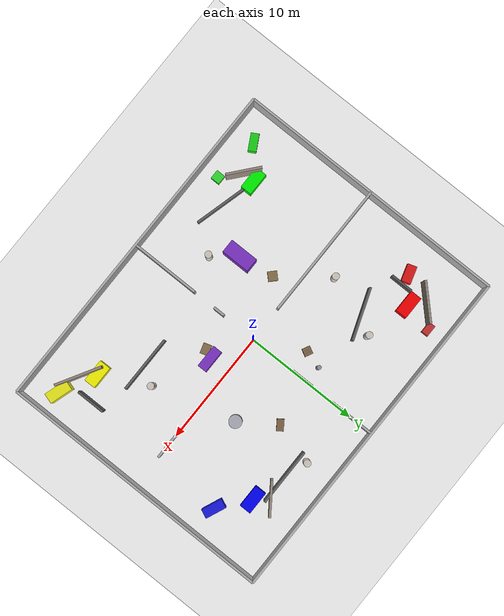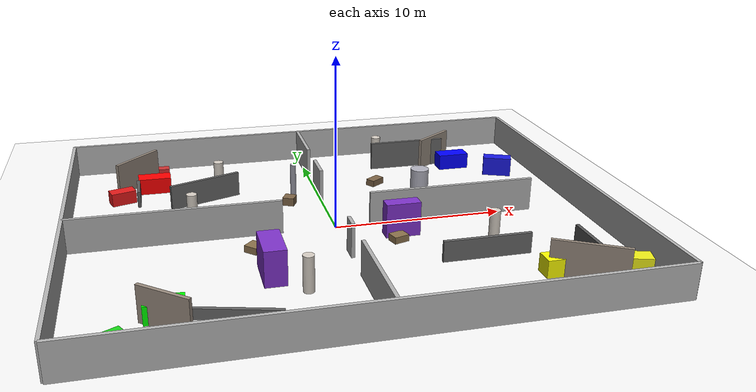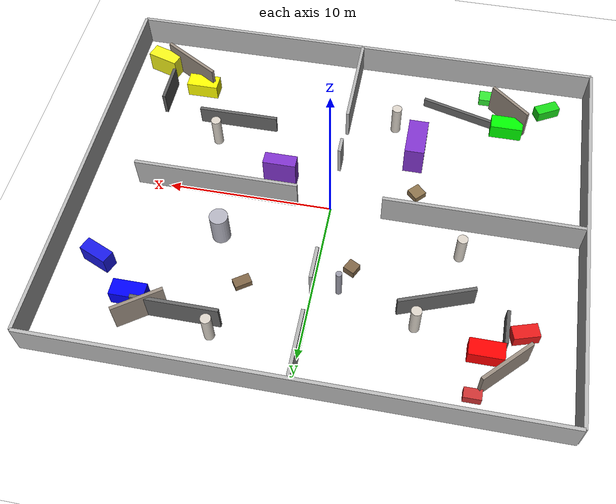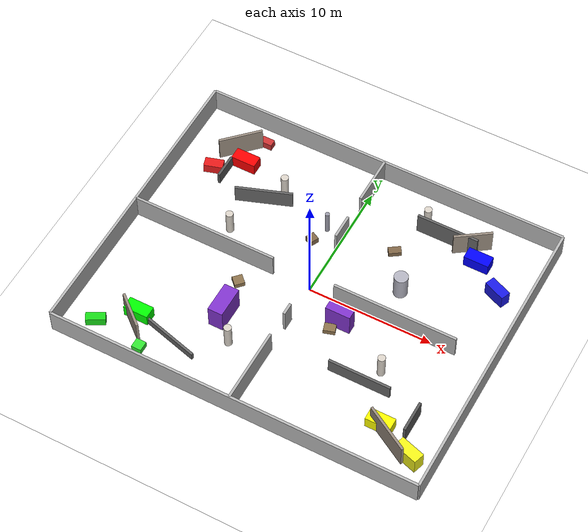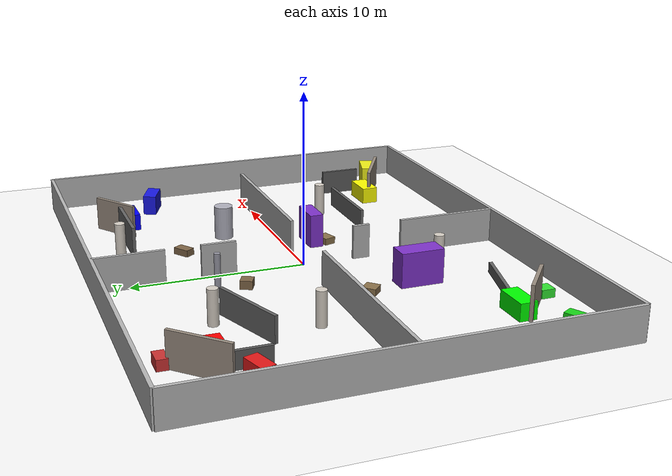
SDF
<?xml version="1.0" ?>
<sdf version="1.7">
  <world name="warehouse_world">

<!-- Plugins                                               -->

<plugin filename="gz-sim-physics-system"
        name="gz::sim::systems::Physics"/>
<plugin filename="gz-sim-user-commands-system"
        name="gz::sim::systems::UserCommands"/>
<plugin filename="gz-sim-scene-broadcaster-system"
        name="gz::sim::systems::SceneBroadcaster"/>
<plugin filename="gz-sim-sensors-system"
        name="gz::sim::systems::Sensors">
  <render_engine>ogre2</render_engine>
</plugin>
<plugin filename="gz-sim-imu-system"
        name="gz::sim::systems::Imu"/>
<plugin filename="gz-sim-air-pressure-system"
        name="gz::sim::systems::AirPressure"/>
<plugin filename="gz-sim-magnetometer-system"
        name="gz::sim::systems::Magnetometer"/>
<plugin filename="gz-sim-navsat-system"
        name="gz::sim::systems::NavSat"/>

<magnetic_field>6e-06 2.3e-05 -4.2e-05</magnetic_field>
<atmosphere type="adiabatic"/>
<spherical_coordinates>
  <surface_model>EARTH_WGS84</surface_model>
  <world_frame_orientation>ENU</world_frame_orientation>
  <latitude_deg>47.397971057728974</latitude_deg>
  <longitude_deg>8.546163739800146</longitude_deg>
  <elevation>0</elevation>
</spherical_coordinates>

<!-- Sun -->
<include>
  <uri>https://fuel.gazebosim.org/1.0/OpenRobotics/models/Sun</uri>
</include>

<!-- FLOOR                                                 -->

<model name="white_floor">
  <static>true</static>
  <pose>0 0 0 0 0 0</pose>
  <link name="floor_link">
    <collision name="collision">
      <geometry><plane><normal>0 0 1</normal><size>40 40</size></plane></geometry>
    </collision>
    <visual name="visual">
      <geometry><plane><normal>0 0 1</normal><size>40 40</size></plane></geometry>
      <material>
        <ambient>1 1 1 1</ambient>
        <diffuse>1 1 1 1</diffuse>
        <specular>0.1 0.1 0.1 1</specular>
      </material>
    </visual>
  </link>
</model>

<!-- OUTER WALLS                                           -->

<model name="wall_north">
  <static>true</static>
  <pose>0 12 1 0 0 0</pose>
  <link name="link">
    <collision name="collision"><geometry><box><size>30 0.2 2</size></box></geometry></collision>
    <visual name="visual"><geometry><box><size>30 0.2 2</size></box></geometry></visual>
  </link>
</model>

<model name="wall_south">
  <static>true</static>
  <pose>0 -12 1 0 0 0</pose>
  <link name="link">
    <collision name="collision"><geometry><box><size>30 0.2 2</size></box></geometry></collision>
    <visual name="visual"><geometry><box><size>30 0.2 2</size></box></geometry></visual>
  </link>
</model>

<model name="wall_east">
  <static>true</static>
  <pose>15 0 1 0 0 0</pose>
  <link name="link">
    <collision name="collision"><geometry><box><size>0.2 24 2</size></box></geometry></collision>
    <visual name="visual"><geometry><box><size>0.2 24 2</size></box></geometry></visual>
  </link>
</model>

<model name="wall_west">
  <static>true</static>
  <pose>-15 0 1 0 0 0</pose>
  <link name="link">
    <collision name="collision"><geometry><box><size>0.2 24 2</size></box></geometry></collision>
    <visual name="visual"><geometry><box><size>0.2 24 2</size></box></geometry></visual>
  </link>
</model>

<!-- INTERNAL WALLS  (asymmetric openings)                 -->
<!-- Horizontal mid-wall: opening shifted to x=-2 instead  -->
<!-- of center, so left/right passages are not mirrors.    -->

<!-- Left segment ends at x=-3.1 (opening from -3 to -1) -->
<model name="mid_wall_left">
  <static>true</static>
  <pose>-9.05 0 1 0 0 0</pose>
  <link name="link">
    <collision name="collision"><geometry><box><size>11.9 0.2 2</size></box></geometry></collision>
    <visual name="visual">
      <geometry><box><size>11.9 0.2 2</size></box></geometry>
      <material><ambient>0.7 0.7 0.7 1</ambient><diffuse>0.7 0.7 0.7 1</diffuse></material>
    </visual>
  </link>
</model>

<!-- Right segment starts at x=-1 and goes to x=15 -->
<model name="mid_wall_right">
  <static>true</static>
  <pose>7 0 1 0 0 0</pose>
  <link name="link">
    <collision name="collision"><geometry><box><size>10 0.2 2</size></box></geometry></collision>
    <visual name="visual">
      <geometry><box><size>10 0.2 2</size></box></geometry>
      <material><ambient>0.7 0.7 0.7 1</ambient><diffuse>0.7 0.7 0.7 1</diffuse></material>
    </visual>
  </link>
</model>

<!-- Vertical mid-wall: two openings at y=+7 (width 2) and y=-5 (width 2) -->
<!-- These are at different Y positions — asymmetric -->
<!-- top segment: y=8..12 (len=4) -->
<model name="mid_vertical_top">
  <static>true</static>
  <pose>0 10 1 0 0 0</pose>
  <link name="link">
    <collision name="collision"><geometry><box><size>0.2 4 2</size></box></geometry></collision>
    <visual name="visual">
      <geometry><box><size>0.2 4 2</size></box></geometry>
      <material><ambient>0.7 0.7 0.7 1</ambient><diffuse>0.7 0.7 0.7 1</diffuse></material>
    </visual>
  </link>
</model>

<!-- upper-middle segment: y=4..6 (len=2), gap above at y=6..8 -->
<model name="mid_vertical_upper_mid">
  <static>true</static>
  <pose>0 5 1 0 0 0</pose>
  <link name="link">
    <collision name="collision"><geometry><box><size>0.2 2 2</size></box></geometry></collision>
    <visual name="visual">
      <geometry><box><size>0.2 2 2</size></box></geometry>
      <material><ambient>0.7 0.7 0.7 1</ambient><diffuse>0.7 0.7 0.7 1</diffuse></material>
    </visual>
  </link>
</model>

<!-- middle segment: y=-4..-3 (len=1), gap below at y=-5..-3 -->
<model name="mid_vertical_lower_mid">
  <static>true</static>
  <pose>0 -3.5 1 0 0 0</pose>
  <link name="link">
    <collision name="collision"><geometry><box><size>0.2 1 2</size></box></geometry></collision>
    <visual name="visual">
      <geometry><box><size>0.2 1 2</size></box></geometry>
      <material><ambient>0.7 0.7 0.7 1</ambient><diffuse>0.7 0.7 0.7 1</diffuse></material>
    </visual>
  </link>
</model>

<!-- bottom segment: y=-12..-6 (len=6), gap at y=-6..-4 -->
<model name="mid_vertical_bottom">
  <static>true</static>
  <pose>0 -9 1 0 0 0</pose>
  <link name="link">
    <collision name="collision"><geometry><box><size>0.2 6 2</size></box></geometry></collision>
    <visual name="visual">
      <geometry><box><size>0.2 6 2</size></box></geometry>
      <material><ambient>0.7 0.7 0.7 1</ambient><diffuse>0.7 0.7 0.7 1</diffuse></material>
    </visual>
  </link>
</model>

<!-- DIAGONAL WALL SEGMENTS  (break axis-alignment)        -->

<!-- Diagonal spur in top-left quadrant, 45 deg -->
<model name="diag_wall_tl">
  <static>true</static>
  <pose>-11 9 1 0 0 0.785</pose>
  <link name="link">
    <collision name="collision"><geometry><box><size>3.5 0.2 2</size></box></geometry></collision>
    <visual name="visual">
      <geometry><box><size>3.5 0.2 2</size></box></geometry>
      <material><ambient>0.6 0.55 0.5 1</ambient><diffuse>0.6 0.55 0.5 1</diffuse></material>
    </visual>
  </link>
</model>

<!-- Diagonal spur in bottom-right quadrant, -30 deg -->
<model name="diag_wall_br">
  <static>true</static>
  <pose>11 -9 1 0 0 -0.524</pose>
  <link name="link">
    <collision name="collision"><geometry><box><size>4 0.2 2</size></box></geometry></collision>
    <visual name="visual">
      <geometry><box><size>4 0.2 2</size></box></geometry>
      <material><ambient>0.6 0.55 0.5 1</ambient><diffuse>0.6 0.55 0.5 1</diffuse></material>
    </visual>
  </link>
</model>

<!-- Short angled wall in top-right, ~35 deg -->
<model name="diag_wall_tr">
  <static>true</static>
  <pose>9 9 1 0 0 0.611</pose>
  <link name="link">
    <collision name="collision"><geometry><box><size>3 0.2 2</size></box></geometry></collision>
    <visual name="visual">
      <geometry><box><size>3 0.2 2</size></box></geometry>
      <material><ambient>0.6 0.55 0.5 1</ambient><diffuse>0.6 0.55 0.5 1</diffuse></material>
    </visual>
  </link>
</model>

<!-- Short angled wall in bottom-left, ~-40 deg -->
<model name="diag_wall_bl">
  <static>true</static>
  <pose>-10 -9 1 0 0 -0.698</pose>
  <link name="link">
    <collision name="collision"><geometry><box><size>3 0.2 2</size></box></geometry></collision>
    <visual name="visual">
      <geometry><box><size>3 0.2 2</size></box></geometry>
      <material><ambient>0.6 0.55 0.5 1</ambient><diffuse>0.6 0.55 0.5 1</diffuse></material>
    </visual>
  </link>
</model>

<!-- CYLINDRICAL PILLARS  (distinctive LiDAR landmarks)    -->
<!-- Placed asymmetrically so no two quadrants are mirrors -->

<model name="pillar_1">
  <static>true</static>
  <pose>-6 7 1 0 0 0</pose>
  <link name="link">
    <collision name="collision"><geometry><cylinder><radius>0.3</radius><length>2</length></cylinder></geometry></collision>
    <visual name="visual">
      <geometry><cylinder><radius>0.3</radius><length>2</length></cylinder></geometry>
      <material><ambient>0.85 0.82 0.78 1</ambient><diffuse>0.85 0.82 0.78 1</diffuse></material>
    </visual>
  </link>
</model>

<model name="pillar_2">
  <static>true</static>
  <pose>5 9.5 1 0 0 0</pose>
  <link name="link">
    <collision name="collision"><geometry><cylinder><radius>0.3</radius><length>2</length></cylinder></geometry></collision>
    <visual name="visual">
      <geometry><cylinder><radius>0.3</radius><length>2</length></cylinder></geometry>
      <material><ambient>0.85 0.82 0.78 1</ambient><diffuse>0.85 0.82 0.78 1</diffuse></material>
    </visual>
  </link>
</model>

<model name="pillar_3">
  <static>true</static>
  <pose>-3 -7 1 0 0 0</pose>
  <link name="link">
    <collision name="collision"><geometry><cylinder><radius>0.3</radius><length>2</length></cylinder></geometry></collision>
    <visual name="visual">
      <geometry><cylinder><radius>0.3</radius><length>2</length></cylinder></geometry>
      <material><ambient>0.85 0.82 0.78 1</ambient><diffuse>0.85 0.82 0.78 1</diffuse></material>
    </visual>
  </link>
</model>

<model name="pillar_4">
  <static>true</static>
  <pose>8 -4 1 0 0 0</pose>
  <link name="link">
    <collision name="collision"><geometry><cylinder><radius>0.3</radius><length>2</length></cylinder></geometry></collision>
    <visual name="visual">
      <geometry><cylinder><radius>0.3</radius><length>2</length></cylinder></geometry>
      <material><ambient>0.85 0.82 0.78 1</ambient><diffuse>0.85 0.82 0.78 1</diffuse></material>
    </visual>
  </link>
</model>

<model name="pillar_5">
  <static>true</static>
  <pose>-8 2 1 0 0 0</pose>
  <link name="link">
    <collision name="collision"><geometry><cylinder><radius>0.3</radius><length>2</length></cylinder></geometry></collision>
    <visual name="visual">
      <geometry><cylinder><radius>0.3</radius><length>2</length></cylinder></geometry>
      <material><ambient>0.85 0.82 0.78 1</ambient><diffuse>0.85 0.82 0.78 1</diffuse></material>
    </visual>
  </link>
</model>

<!-- Wide pillar — different radius makes it a unique landmark -->
<model name="pillar_6_wide">
  <static>true</static>
  <pose>6 3 1 0 0 0</pose>
  <link name="link">
    <collision name="collision"><geometry><cylinder><radius>0.55</radius><length>2</length></cylinder></geometry></collision>
    <visual name="visual">
      <geometry><cylinder><radius>0.55</radius><length>2</length></cylinder></geometry>
      <material><ambient>0.7 0.7 0.75 1</ambient><diffuse>0.7 0.7 0.75 1</diffuse></material>
    </visual>
  </link>
</model>

<!-- Thin pillar near entrance area -->
<model name="pillar_7_thin">
  <static>true</static>
  <pose>-1.5 5.5 1 0 0 0</pose>
  <link name="link">
    <collision name="collision"><geometry><cylinder><radius>0.18</radius><length>2</length></cylinder></geometry></collision>
    <visual name="visual">
      <geometry><cylinder><radius>0.18</radius><length>2</length></cylinder></geometry>
      <material><ambient>0.6 0.6 0.65 1</ambient><diffuse>0.6 0.6 0.65 1</diffuse></material>
    </visual>
  </link>
</model>

<!-- CENTER STRUCTURE  (anchors map center, breaks symmetry)-->
<!-- An L-shaped structure composed of two boxes           -->

<model name="center_block_main">
  <static>true</static>
  <pose>-4.5 -5 1 0 0 0</pose>
  <link name="link">
    <collision name="collision"><geometry><box><size>1.2 2.5 2</size></box></geometry></collision>
    <visual name="visual">
      <geometry><box><size>1.2 2.5 2</size></box></geometry>
      <material><ambient>0.5 0.2 0.8 1</ambient><diffuse>0.5 0.2 0.8 1</diffuse></material>
    </visual>
  </link>
</model>

<model name="center_block_arm">
  <static>true</static>
  <pose>3.4 -1.7 1 0 0 0</pose>
  <link name="link">
    <collision name="collision"><geometry><box><size>2 0.8 2</size></box></geometry></collision>
    <visual name="visual">
      <geometry><box><size>2 0.8 2</size></box></geometry>
      <material><ambient>0.5 0.2 0.8 1</ambient><diffuse>0.5 0.2 0.8 1</diffuse></material>
    </visual>
  </link>
</model>

<!-- AISLE BLOCKERS  (rotated, varied heights)             -->

<!-- Top-left: rotated 20 deg, full height -->
<model name="blocker_tl">
  <static>true</static>
  <pose>-7 5.5 0.75 0 0 0.349</pose>
  <link name="link">
    <collision name="collision"><geometry><box><size>4.5 0.2 1.5</size></box></geometry></collision>
    <visual name="visual">
      <geometry><box><size>4.5 0.2 1.5</size></box></geometry>
      <material><ambient>0.4 0.4 0.4 1</ambient><diffuse>0.4 0.4 0.4 1</diffuse></material>
    </visual>
  </link>
</model>

<!-- Top-right: straight, taller (1.8m) -->
<model name="blocker_tr">
  <static>true</static>
  <pose>7 8.8 0.9 0 0 0</pose>
  <link name="link">
    <collision name="collision"><geometry><box><size>5 0.2 1.8</size></box></geometry></collision>
    <visual name="visual">
      <geometry><box><size>5 0.2 1.8</size></box></geometry>
      <material><ambient>0.4 0.4 0.4 1</ambient><diffuse>0.4 0.4 0.4 1</diffuse></material>
    </visual>
  </link>
</model>

<!-- Bottom-left: rotated -15 deg, low (0.6m) -->
<model name="blocker_bl">
  <static>true</static>
  <pose>-7 -8.8 0.3 0 0 -0.262</pose>
  <link name="link">
    <collision name="collision"><geometry><box><size>5 0.2 0.6</size></box></geometry></collision>
    <visual name="visual">
      <geometry><box><size>5 0.2 0.6</size></box></geometry>
      <material><ambient>0.4 0.4 0.4 1</ambient><diffuse>0.4 0.4 0.4 1</diffuse></material>
    </visual>
  </link>
</model>

<!-- Bottom-right: straight, medium (1.2m) -->
<model name="blocker_br">
  <static>true</static>
  <pose>7 -5.5 0.6 0 0 0</pose>
  <link name="link">
    <collision name="collision"><geometry><box><size>5 0.2 1.2</size></box></geometry></collision>
    <visual name="visual">
      <geometry><box><size>5 0.2 1.2</size></box></geometry>
      <material><ambient>0.4 0.4 0.4 1</ambient><diffuse>0.4 0.4 0.4 1</diffuse></material>
    </visual>
  </link>
</model>

<!-- Extra L-shaped blocker cluster in top-left aisle -->
<model name="blocker_tl_b">
  <static>true</static>
  <pose>-11 6.5 0.5 0 0 1.5708</pose>
  <link name="link">
    <collision name="collision"><geometry><box><size>2 0.2 1.0</size></box></geometry></collision>
    <visual name="visual">
      <geometry><box><size>2 0.2 1.0</size></box></geometry>
      <material><ambient>0.35 0.35 0.35 1</ambient><diffuse>0.35 0.35 0.35 1</diffuse></material>
    </visual>
  </link>
</model>

<!-- Extra blocker in bottom-right area -->
<model name="blocker_br_b">
  <static>true</static>
  <pose>12 -7 0.75 0 0 1.5708</pose>
  <link name="link">
    <collision name="collision"><geometry><box><size>2.5 0.2 1.5</size></box></geometry></collision>
    <visual name="visual">
      <geometry><box><size>2.5 0.2 1.5</size></box></geometry>
      <material><ambient>0.35 0.35 0.35 1</ambient><diffuse>0.35 0.35 0.35 1</diffuse></material>
    </visual>
  </link>
</model>

<!-- SHELF CLUSTERS  (grouped boxes per zone, irregular)   -->
<!-- Each zone has 2-3 boxes at varied positions/rotations -->

<!-- RED zone cluster (top-left) -->
<model name="shelf_red_a">
  <static>true</static>
  <pose>-10 8 0.5 0 0 0</pose>
  <link name="link">
    <collision name="collision"><geometry><box><size>2 1 1</size></box></geometry></collision>
    <visual name="visual">
      <geometry><box><size>2 1 1</size></box></geometry>
      <material><ambient>1 0 0 1</ambient><diffuse>1 0 0 1</diffuse></material>
    </visual>
  </link>
</model>

<model name="shelf_red_b">
  <static>true</static>
  <pose>-12 6.5 0.4 0 0 0.3</pose>
  <link name="link">
    <collision name="collision"><geometry><box><size>1.5 0.8 0.8</size></box></geometry></collision>
    <visual name="visual">
      <geometry><box><size>1.5 0.8 0.8</size></box></geometry>
      <material><ambient>0.9 0.1 0.1 1</ambient><diffuse>0.9 0.1 0.1 1</diffuse></material>
    </visual>
  </link>
</model>

<model name="shelf_red_c">
  <static>true</static>
  <pose>-9.5 10.5 0.3 0 0 0</pose>
  <link name="link">
    <collision name="collision"><geometry><box><size>1 0.6 0.6</size></box></geometry></collision>
    <visual name="visual">
      <geometry><box><size>1 0.6 0.6</size></box></geometry>
      <material><ambient>0.8 0.2 0.2 1</ambient><diffuse>0.8 0.2 0.2 1</diffuse></material>
    </visual>
  </link>
</model>

<!-- BLUE zone cluster (top-right) -->
<model name="shelf_blue_a">
  <static>true</static>
  <pose>10 8 0.5 0 0 0</pose>
  <link name="link">
    <collision name="collision"><geometry><box><size>2 1 1</size></box></geometry></collision>
    <visual name="visual">
      <geometry><box><size>2 1 1</size></box></geometry>
      <material><ambient>0 0 1 1</ambient><diffuse>0 0 1 1</diffuse></material>
    </visual>
  </link>
</model>

<model name="shelf_blue_b">
  <static>true</static>
  <pose>12.5 6 0.6 0 0 -0.4</pose>
  <link name="link">
    <collision name="collision"><geometry><box><size>1.8 0.8 1.2</size></box></geometry></collision>
    <visual name="visual">
      <geometry><box><size>1.8 0.8 1.2</size></box></geometry>
      <material><ambient>0.1 0.1 0.9 1</ambient><diffuse>0.1 0.1 0.9 1</diffuse></material>
    </visual>
  </link>
</model>

<!-- GREEN zone cluster (bottom-left) -->
<model name="shelf_green_a">
  <static>true</static>
  <pose>-10 -8 0.5 0 0 0</pose>
  <link name="link">
    <collision name="collision"><geometry><box><size>2 1 1</size></box></geometry></collision>
    <visual name="visual">
      <geometry><box><size>2 1 1</size></box></geometry>
      <material><ambient>0 1 0 1</ambient><diffuse>0 1 0 1</diffuse></material>
    </visual>
  </link>
</model>

<model name="shelf_green_b">
  <static>true</static>
  <pose>-12.5 -10 0.35 0 0 0.5</pose>
  <link name="link">
    <collision name="collision"><geometry><box><size>1.5 0.7 0.7</size></box></geometry></collision>
    <visual name="visual">
      <geometry><box><size>1.5 0.7 0.7</size></box></geometry>
      <material><ambient>0.1 0.85 0.1 1</ambient><diffuse>0.1 0.85 0.1 1</diffuse></material>
    </visual>
  </link>
</model>

<model name="shelf_green_c">
  <static>true</static>
  <pose>-8.5 -10.5 0.25 0 0 0</pose>
  <link name="link">
    <collision name="collision"><geometry><box><size>0.8 0.8 0.5</size></box></geometry></collision>
    <visual name="visual">
      <geometry><box><size>0.8 0.8 0.5</size></box></geometry>
      <material><ambient>0.2 0.9 0.2 1</ambient><diffuse>0.2 0.9 0.2 1</diffuse></material>
    </visual>
  </link>
</model>

<!-- YELLOW zone cluster (bottom-right) -->
<model name="shelf_yellow_a">
  <static>true</static>
  <pose>10 -8 0.5 0 0 0</pose>
  <link name="link">
    <collision name="collision"><geometry><box><size>2 1 1</size></box></geometry></collision>
    <visual name="visual">
      <geometry><box><size>2 1 1</size></box></geometry>
      <material><ambient>1 1 0 1</ambient><diffuse>1 1 0 1</diffuse></material>
    </visual>
  </link>
</model>

<model name="shelf_yellow_b">
  <static>true</static>
  <pose>13 -9.5 0.7 0 0 -0.3</pose>
  <link name="link">
    <collision name="collision"><geometry><box><size>2 0.9 1.4</size></box></geometry></collision>
    <visual name="visual">
      <geometry><box><size>2 0.9 1.4</size></box></geometry>
      <material><ambient>0.95 0.95 0.1 1</ambient><diffuse>0.95 0.95 0.1 1</diffuse></material>
    </visual>
  </link>
</model>

<!-- ADDITIONAL CRATE-LEVEL OBSTACLES (low, irregular)     -->
<!-- Gives LiDAR data at floor level; helps 3D SLAM        -->

<model name="crate_1">
  <static>true</static>
  <pose>-5 -2 0.2 0 0 0.8</pose>
  <link name="link">
    <collision name="collision"><geometry><box><size>0.8 0.8 0.4</size></box></geometry></collision>
    <visual name="visual">
      <geometry><box><size>0.8 0.8 0.4</size></box></geometry>
      <material><ambient>0.55 0.45 0.3 1</ambient><diffuse>0.55 0.45 0.3 1</diffuse></material>
    </visual>
  </link>
</model>

<model name="crate_2">
  <static>true</static>
  <pose>3 -2.5 0.2 0 0 0.3</pose>
  <link name="link">
    <collision name="collision"><geometry><box><size>0.9 0.7 0.4</size></box></geometry></collision>
    <visual name="visual">
      <geometry><box><size>0.9 0.7 0.4</size></box></geometry>
      <material><ambient>0.55 0.45 0.3 1</ambient><diffuse>0.55 0.45 0.3 1</diffuse></material>
    </visual>
  </link>
</model>

<model name="crate_3">
  <static>true</static>
  <pose>-2 4 0.25 0 0 1.1</pose>
  <link name="link">
    <collision name="collision"><geometry><box><size>0.7 0.7 0.5</size></box></geometry></collision>
    <visual name="visual">
      <geometry><box><size>0.7 0.7 0.5</size></box></geometry>
      <material><ambient>0.5 0.4 0.28 1</ambient><diffuse>0.5 0.4 0.28 1</diffuse></material>
    </visual>
  </link>
</model>

<model name="crate_4">
  <static>true</static>
  <pose>4 6 0.2 0 0 0.6</pose>
  <link name="link">
    <collision name="collision"><geometry><box><size>1.0 0.6 0.4</size></box></geometry></collision>
    <visual name="visual">
      <geometry><box><size>1.0 0.6 0.4</size></box></geometry>
      <material><ambient>0.5 0.4 0.28 1</ambient><diffuse>0.5 0.4 0.28 1</diffuse></material>
    </visual>
  </link>
</model>

  </world>
</sdf>
